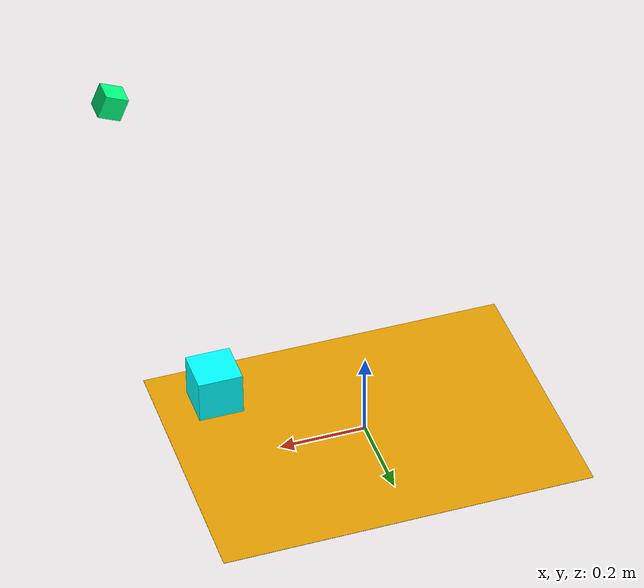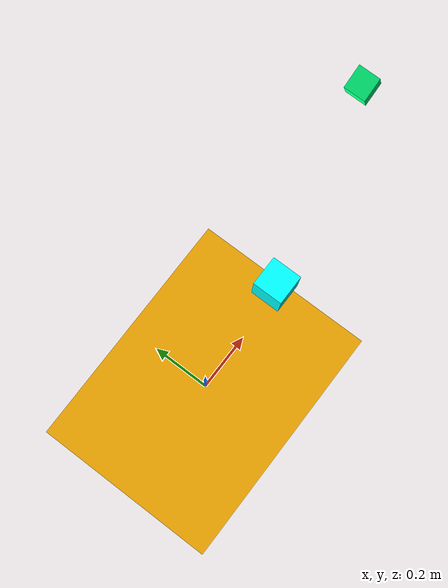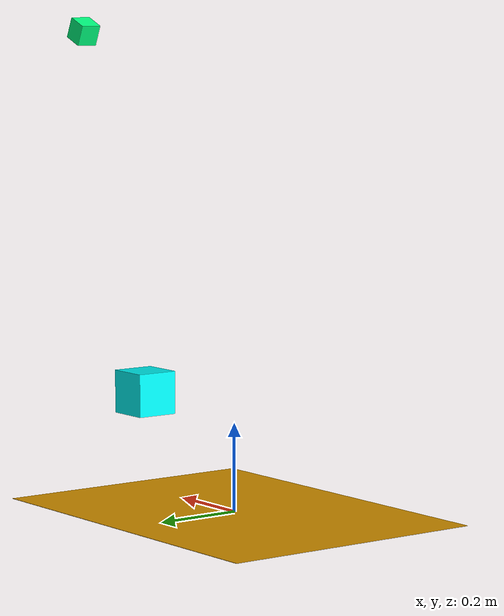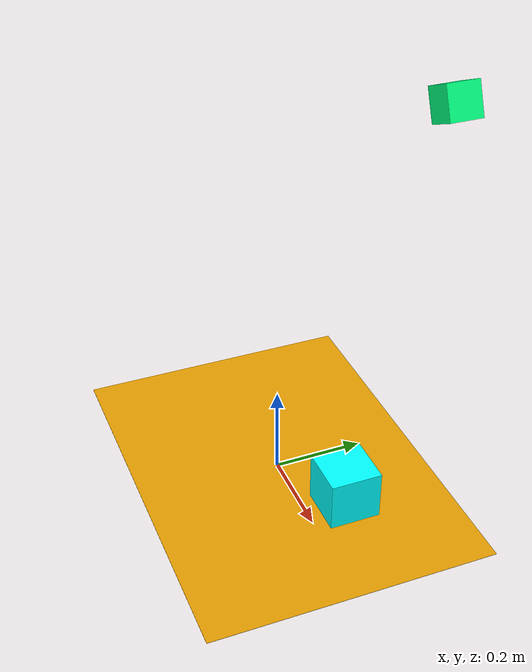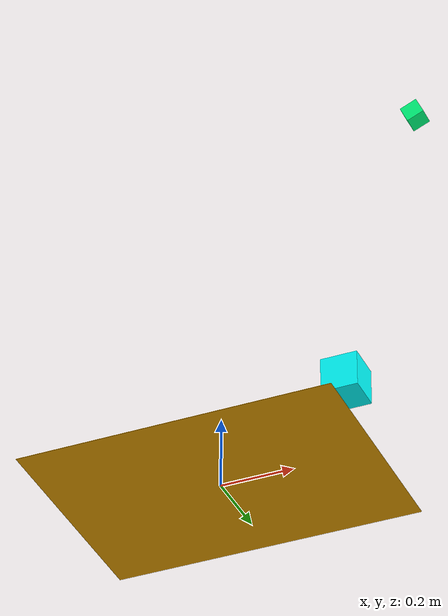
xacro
<?xml version="1.0"?>
<robot xmlns:xacro="http://ros.org/wiki/xacro"
		name="lxind">

    <!-- servo4: smaller robot -->

	<!-- const -->
	<xacro:property name="M_PI" value="3.1415926" />

	<!-- base -->
	<link name="base_footprint">
		<visual>
			<geometry>
				<box size="0.853 0.629 0.001" />
			</geometry>
		</visual>
	</link>

	<link name="base_link">
		<visual>
			<geometry>
				<box size="0.853 0.629 0.001" />
			</geometry>
			<material name="green">
				<color rgba="0 1 0 1" />
			</material>
		</visual>
	</link>

	<link name="laser_link">
		<visual>
			<geometry>
				<box size="0.1 0.1 0.1" />
			</geometry>
			<material name="gb">
				<color rgba="0 1 1 1" />
			</material>
		</visual>
	</link>

<!-- ifm camera -->
	<link name="ifm3d/camera_link">
		<visual>
			<geometry>
				<box size="0.05 0.05 0.05" />
			</geometry>
			<material name="g05b">
				<color rgba="0 1 0.5 1" />
			</material>
		</visual>
	</link>

<!-- JOINTS -->
	<joint name="base_joint" type="fixed">
		<origin rpy="0 0 0" xyz="0 0 0" />
		<parent link="base_footprint" />
		<child link="base_link" />
	</joint>  <!-- AT TOP SURF===> NOW: FLOOR same -->

	<joint name="base_laser_joint" type="fixed">
		<origin rpy="${M_PI} 0 0" xyz="0.346 0 0.228" />   <!-- xy offset from centre of driving wheel -->
		<parent link="base_link" />
		<child link="laser_link" />
	</joint>

	<joint name="base_ifm_joint" type="fixed">
		<origin rpy="${-M_PI/2} ${M_PI*0.37} 0" xyz="0.55 0.03 1.06" /> <!-- around red/green/blue axis -->
            <!--  around y axis(minus ->toward ground), x(ros axis), z  ${M_PI/4} -->
		<parent link="base_link" />
		<child link="ifm3d/camera_link" />
	</joint>

</robot>
